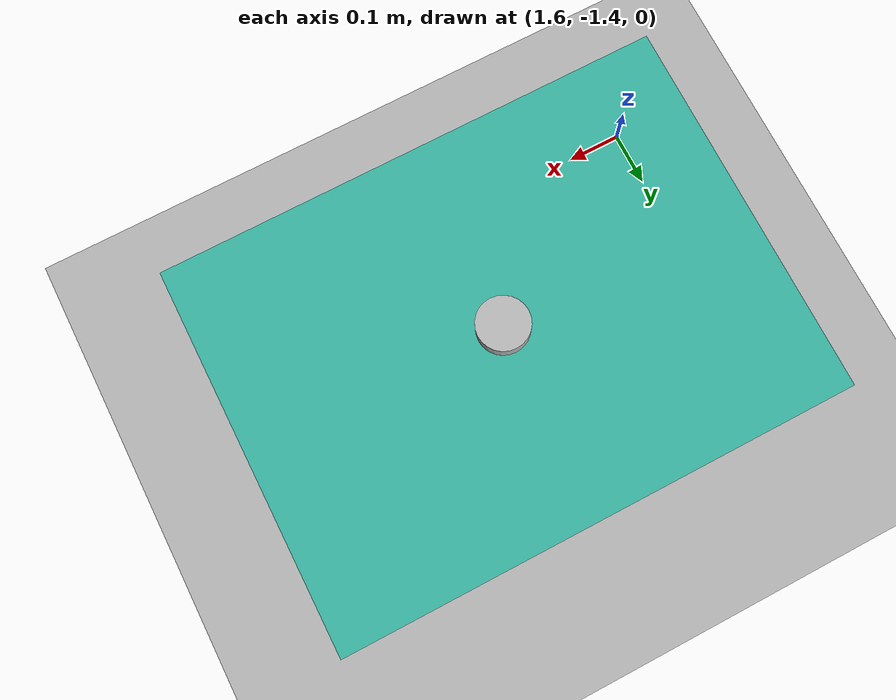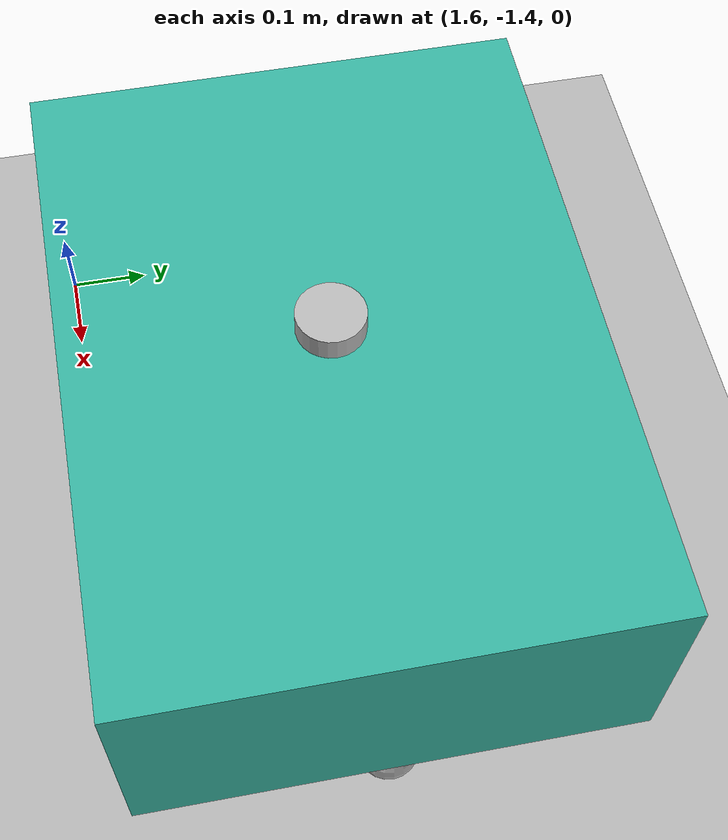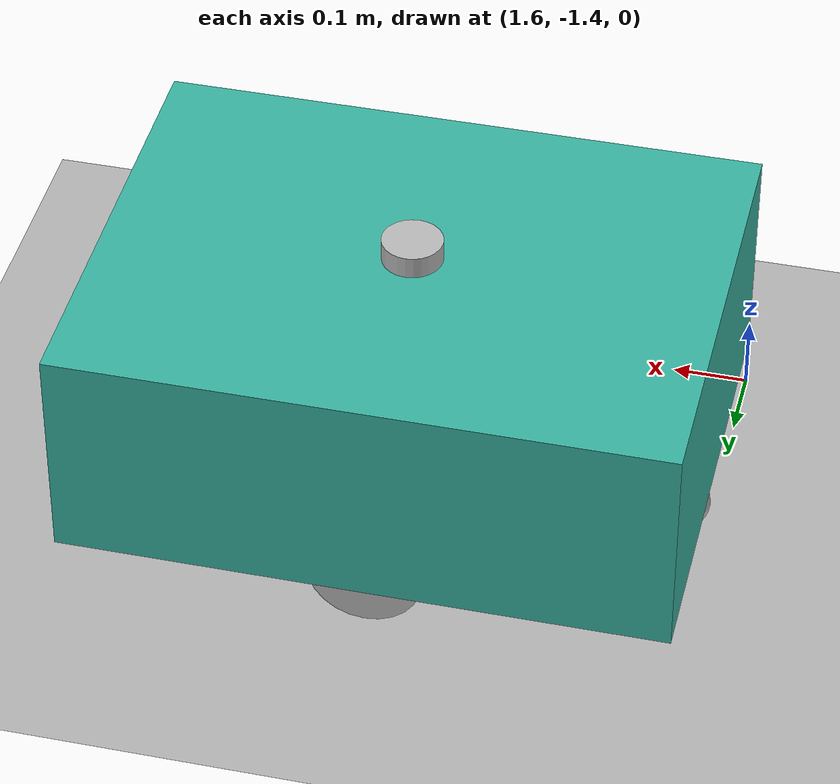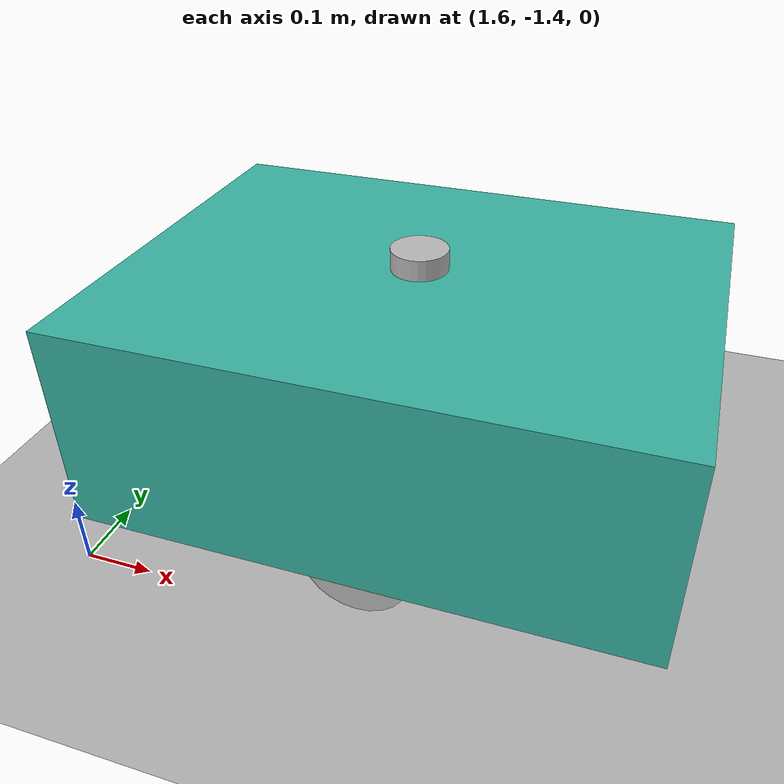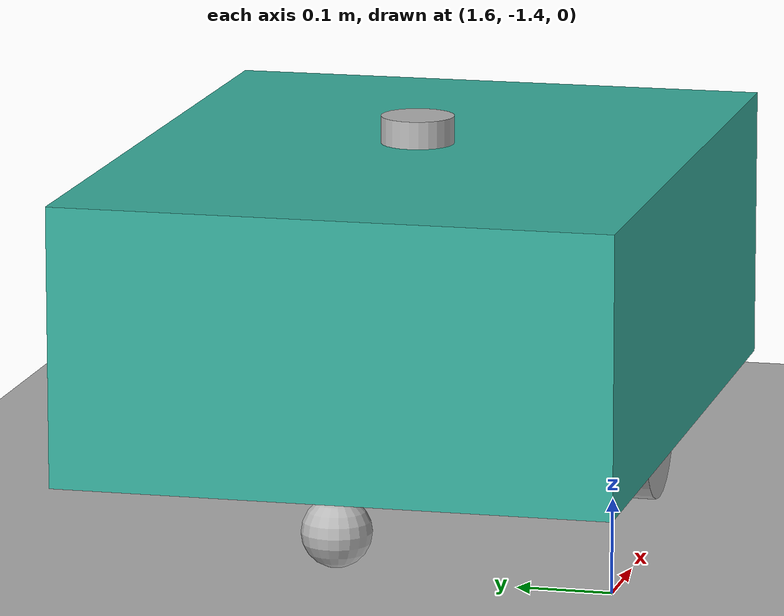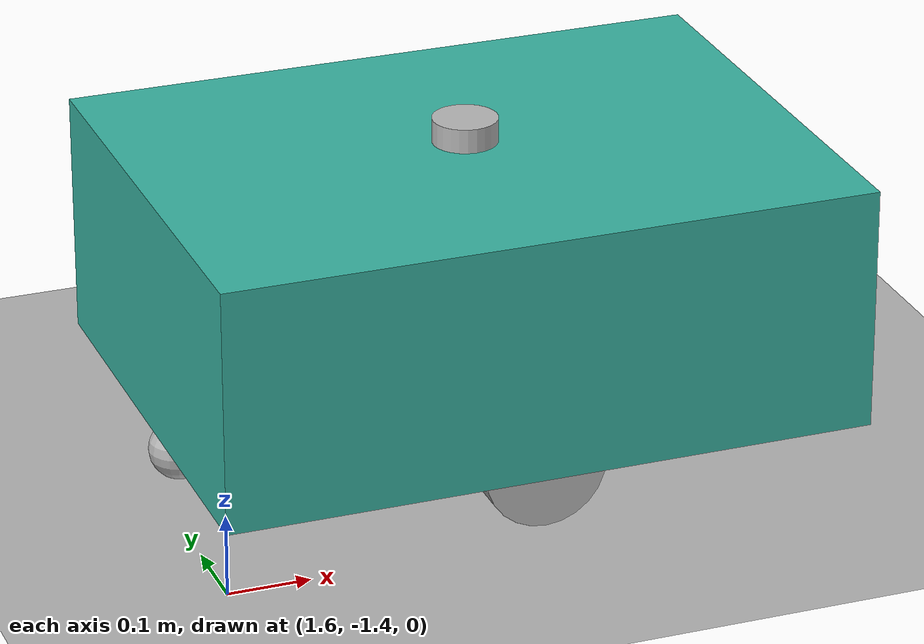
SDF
<sdf version="1.8">
 <world name="warehouse_distinct">
  <model name="ground_plane">
   <static>true</static>
   <link name="link">
    <collision name="collision">
     <geometry><plane><normal>0 0 1</normal><size>40.0 30.0</size></plane></geometry>
     <surface><friction><ode><mu>0.8</mu><mu2>0.8</mu2></ode></friction></surface>
    </collision>
    <visual name="visual">
     <geometry><plane><normal>0 0 1</normal><size>40.0 30.0</size></plane></geometry>
     <material><ambient>0.7 0.7 0.7 1</ambient><diffuse>0.7 0.7 0.7 1</diffuse></material>
    </visual>
   </link>
  </model>
  <model name="robot_29">
   <pose>2.0 -1.1 0 0 0 0.0</pose>
   <link name="chassis">
    <pose>0 0 0.225 0 0 0</pose>
    <inertial>
     <mass>50.0</mass>
     <inertia><ixx>1.875</ixx><iyy>3.042</iyy><izz>4.167</izz><ixy>0</ixy><ixz>0</ixz><iyz>0</iyz></inertia>
    </inertial>
    <visual name="v">
     <geometry><box><size>0.8 0.6 0.3</size></box></geometry>
     <material><ambient>0.22 0.70 0.63 1</ambient><diffuse>0.22 0.70 0.63 1</diffuse></material>
    </visual>
    <collision name="c"><geometry><box><size>0.8 0.6 0.3</size></box></geometry></collision>
   </link>
   <link name="left_wheel">
    <pose>0 0.25 0.075 1.5708 0 0</pose>
    <inertial>
     <mass>1.0</mass>
     <inertia><ixx>0.00154</ixx><iyy>0.00154</iyy><izz>0.00281</izz><ixy>0</ixy><ixz>0</ixz><iyz>0</iyz></inertia>
    </inertial>
    <visual name="v">
     <geometry><cylinder><radius>0.075</radius><length>0.04</length></cylinder></geometry>
    </visual>
    <collision name="c">
     <geometry><cylinder><radius>0.075</radius><length>0.04</length></cylinder></geometry>
     <surface><friction><ode><mu>1.0</mu><mu2>1.0</mu2></ode></friction></surface>
    </collision>
   </link>
   <joint name="left_wheel_joint" type="revolute">
    <parent>chassis</parent>
    <child>left_wheel</child>
    <axis><xyz>0 0 1</xyz><limit><lower>-1e16</lower><upper>1e16</upper></limit></axis>
   </joint>
   <link name="right_wheel">
    <pose>0 -0.25 0.075 1.5708 0 0</pose>
    <inertial>
     <mass>1.0</mass>
     <inertia><ixx>0.00154</ixx><iyy>0.00154</iyy><izz>0.00281</izz><ixy>0</ixy><ixz>0</ixz><iyz>0</iyz></inertia>
    </inertial>
    <visual name="v">
     <geometry><cylinder><radius>0.075</radius><length>0.04</length></cylinder></geometry>
    </visual>
    <collision name="c">
     <geometry><cylinder><radius>0.075</radius><length>0.04</length></cylinder></geometry>
     <surface><friction><ode><mu>1.0</mu><mu2>1.0</mu2></ode></friction></surface>
    </collision>
   </link>
   <joint name="right_wheel_joint" type="revolute">
    <parent>chassis</parent>
    <child>right_wheel</child>
    <axis><xyz>0 0 1</xyz><limit><lower>-1e16</lower><upper>1e16</upper></limit></axis>
   </joint>
   <link name="front_caster">
    <pose>0.3625 0 0.0375 0 0 0</pose>
    <inertial>
     <mass>0.5</mass>
     <inertia>
      <ixx>0.000281</ixx>
      <iyy>0.000281</iyy>
      <izz>0.000281</izz>
      <ixy>0</ixy>
      <ixz>0</ixz>
      <iyz>0</iyz>
     </inertia>
    </inertial>
    <visual name="v"><geometry><sphere><radius>0.0375</radius></sphere></geometry></visual>
    <collision name="c">
     <geometry><sphere><radius>0.0375</radius></sphere></geometry>
     <surface><friction><ode><mu>0.01</mu><mu2>0.01</mu2></ode></friction></surface>
    </collision>
   </link>
   <joint name="fc_joint" type="ball"><parent>chassis</parent><child>front_caster</child></joint>
   <link name="rear_caster">
    <pose>-0.3625 0 0.0375 0 0 0</pose>
    <inertial>
     <mass>0.5</mass>
     <inertia>
      <ixx>0.000281</ixx>
      <iyy>0.000281</iyy>
      <izz>0.000281</izz>
      <ixy>0</ixy>
      <ixz>0</ixz>
      <iyz>0</iyz>
     </inertia>
    </inertial>
    <visual name="v"><geometry><sphere><radius>0.0375</radius></sphere></geometry></visual>
    <collision name="c">
     <geometry><sphere><radius>0.0375</radius></sphere></geometry>
     <surface><friction><ode><mu>0.01</mu><mu2>0.01</mu2></ode></friction></surface>
    </collision>
   </link>
   <joint name="rc_joint" type="ball"><parent>chassis</parent><child>rear_caster</child></joint>
   <plugin filename="gz-sim-diff-drive-system" name="gz::sim::systems::DiffDrive">
    <left_joint>left_wheel_joint</left_joint>
    <right_joint>right_wheel_joint</right_joint>
    <wheel_separation>0.5</wheel_separation>
    <wheel_radius>0.075</wheel_radius>
    <max_linear_acceleration>0.8</max_linear_acceleration>
    <max_angular_velocity>2.5</max_angular_velocity>
    <topic>/robot_29/cmd_vel</topic>
    <odom_topic>/robot_29/odom</odom_topic>
    <tf_topic>/robot_29/tf</tf_topic>
    <frame_id>odom</frame_id>
    <child_frame_id>chassis</child_frame_id>
    <odom_publish_frequency>15</odom_publish_frequency>
   </plugin>
   <link name="lidar_link">
    <pose>0 0 0.395 0 0 0</pose>
    <inertial>
     <mass>0.1</mass>
     <inertia>
      <ixx>0.000047</ixx>
      <iyy>0.000047</iyy>
      <izz>0.00008</izz>
      <ixy>0</ixy>
      <ixz>0</ixz>
      <iyz>0</iyz>
     </inertia>
    </inertial>
    <visual name="v"><geometry><cylinder><radius>0.04</radius><length>0.03</length></cylinder></geometry></visual>
    <collision name="c">
     <geometry><cylinder><radius>0.04</radius><length>0.03</length></cylinder></geometry>
    </collision>
    <sensor name="lidar" type="gpu_lidar">
     <always_on>true</always_on>
     <update_rate>10</update_rate>
     <visualize>false</visualize>
     <topic>/robot_29/lidar</topic>
     <ray>
      <scan>
       <horizontal>
        <samples>360</samples>
        <resolution>1</resolution>
        <min_angle>-3.141593</min_angle>
        <max_angle>3.141593</max_angle>
       </horizontal>
      </scan>
      <range><min>0.08</min><max>12.0</max><resolution>0.01</resolution></range>
      <noise><type>gaussian</type><mean>0.0</mean><stddev>0.03</stddev></noise>
     </ray>
    </sensor>
   </link>
   <joint name="lidar_joint" type="fixed"><parent>chassis</parent><child>lidar_link</child></joint>
   <plugin filename="gz-sim-joint-state-publisher-system" name="gz::sim::systems::JointStatePublisher"/>
  </model>
 </world>
</sdf>
